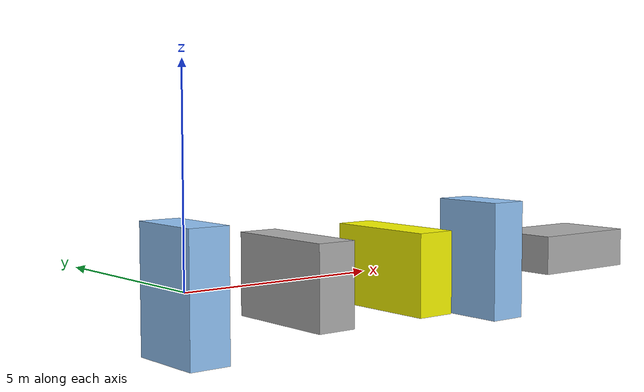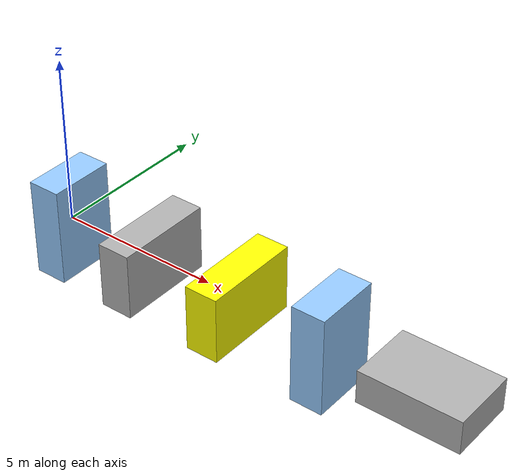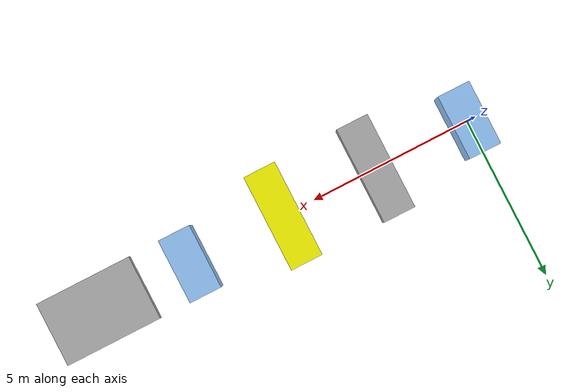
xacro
<?xml version="1.0"?>

<!-- Make the namespace of the robot-->
<robot xmlns:xacro="http://www.ros.org/wiki/xacro" name="ur10e">

    <!--Define constants-->
    <xacro:property name="d_2PI" value="6.283185307179586"/>
    <xacro:property name="d_PI" value="3.141592653589793"/>
    <xacro:property name="d_half_PI" value="1.5707963267948966"/>

    <xacro:property name="mass" value="10" />
    <xacro:property name="length" value="1" />
    <xacro:property name="width" value="2" />
    <xacro:property name="height" value="3" />

    <!--Define Rviz colors-->
     <material name="LightBlue">
        <color rgba="0.589 0.793 1.0 1.0"/>
    </material>
    <material name="LightGrey">
        <color rgba="0.7 0.7 0.7 1.0"/>
    </material>
    <material name="Yellow">
        <color rgba="1.0 1.0 0.0 1.0"/>
    </material>

    <link name="world"/>

    <joint name="world_joint" type="fixed">
        <origin xyz="0.0 0.0 0.0" rpy="0.0 0.0 0.0"/>
        <parent link="world"/>
        <child link="base_link"/>
    </joint>

    <link name="base_link"/>

    <joint name="box1_joint" type="fixed">
        <origin xyz="0.0 0.0 0.0" rpy="0.0 0.0 0.0"/>
        <parent link="world"/>
        <child link="box1"/>
    </joint>

    <link name="box1">
        <visual>
            <origin xyz="0.0 0.0 0.0" rpy="0.0 0.0 0.0"/>
            <geometry>
                <box size="${length} ${width} ${height}"/>
            </geometry>
            <material name="LightBlue"/>
        </visual>
        <inertial>
            <origin xyz="0 0 0" rpy="0 0 0"/>
            <mass value="${mass}"/>
            <inertia
                ixx="${mass / 12.0 * (width*width + height*height)}" ixy="0.0" ixz="0.0"
                iyy="${mass / 12.0 * (length*length + height*height)}" iyz="0.0"
                izz="${mass / 12.0 * (length*length + width*width)}" />
        </inertial>
    </link>

    <joint name="box2_joint" type="fixed">
        <origin xyz="3.0 0.0 0.0" rpy="0.0 0.0 0.0"/>
        <parent link="world"/>
        <child link="box2"/>
    </joint>

    <link name="box2">
        <visual>
            <origin xyz="0.0 0.0 0.0" rpy="${d_half_PI} 0.0 0.0"/>
            <geometry>
                <box size="${length} ${width} ${height}"/>
            </geometry>
            <material name="LightGrey"/>
        </visual>
        <inertial>
            <origin xyz="0.0 0.0 0.0" rpy="${d_half_PI} 0.0 0.0"/>
            <mass value="${mass}"/>
            <inertia
                ixx="${mass / 12.0 * (width*width + height*height)}" ixy="0.0" ixz="0.0"
                iyy="${mass / 12.0 * (length*length + height*height)}" iyz="0.0"
                izz="${mass / 12.0 * (length*length + width*width)}" />
        </inertial>
    </link>

    <joint name="box3_joint" type="fixed">
        <origin xyz="6.0 0.0 0.0" rpy="0.0 0.0 0.0"/>
        <parent link="world"/>
        <child link="box3"/>
    </joint>

    <link name="box3">
        <visual>
            <origin xyz="0.0 0.0 0.0" rpy="${d_half_PI} 0.0 0.0"/>
            <geometry>
                <box size="${length} ${width} ${height}"/>
            </geometry>
            <material name="Yellow"/>
        </visual>
        <inertial>
            <origin xyz="0.0 0.0 0.0" rpy="${d_half_PI} 0.0 0.0"/>
            <mass value="${mass}"/>
            <inertia
                ixx="${mass / 12.0 * (width*width + height*height)}" ixy="0.0" ixz="0.0"
                iyy="${mass / 12.0 * (length*length + width*width)}" iyz="0.0"
                izz="${mass / 12.0 * (length*length + height*height)}" />
        </inertial>
    </link>

    <joint name="box4_joint" type="fixed">
        <origin xyz="9.0 0.0 0.0" rpy="0.0 0.0 0.0"/>
        <parent link="world"/>
        <child link="box4"/>
    </joint>

    <link name="box4">
        <visual>
            <origin xyz="0.0 0.0 0.0" rpy="0.0 0.0 0.0"/>
            <geometry>
                <box size="${length} ${width} ${height}"/>
            </geometry>
            <material name="LightBlue"/>
        </visual>
        <inertial>
            <origin xyz="0 0 0" rpy="0 0 0"/>
            <mass value="${mass}"/>
            <inertia
                ixx="${mass / 12.0 * (width*width + height*height)}" ixy="0.0" ixz="0.0"
                iyy="${mass / 12.0 * (length*length + width*width)}" iyz="0.0"
                izz="${mass / 12.0 * (length*length + height*height)}" />
        </inertial>
    </link>

    <joint name="box5_joint" type="fixed">
        <origin xyz="12.0 0.0 0.0" rpy="0.0 ${d_half_PI} 0.0"/>
        <parent link="world"/>
        <child link="box5"/>
    </joint>

    <link name="box5">
        <visual>
            <origin xyz="0.0 0.0 0.0" rpy="0.0 0.0 0.0"/>
            <geometry>
                <box size="${length} ${width} ${height}"/>
            </geometry>
            <material name="LightGrey"/>
        </visual>
        <inertial>
            <origin xyz="0 0 0" rpy="0 0 0"/>
            <mass value="${mass}"/>
            <inertia
                ixx="${mass / 12.0 * (width*width + height*height)}" ixy="0.0" ixz="0.0"
                iyy="${mass / 12.0 * (length*length + height*height)}" iyz="0.0"
                izz="${mass / 12.0 * (length*length + width*width)}" />
        </inertial>
    </link>

</robot>
